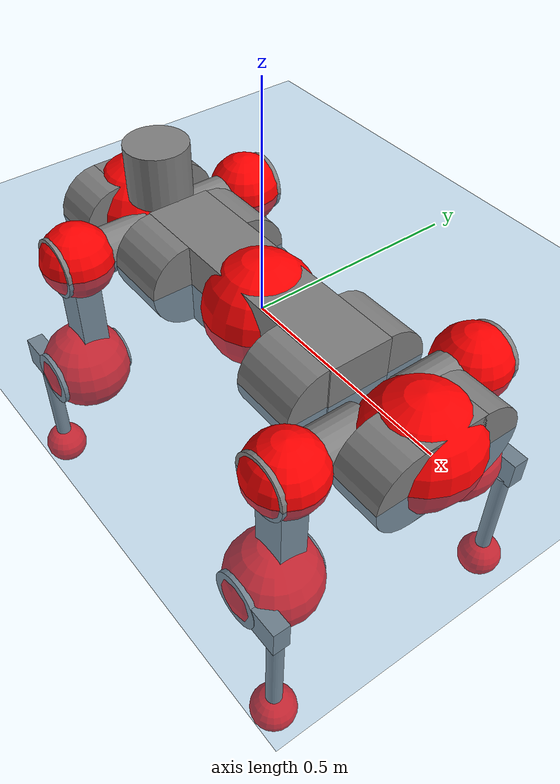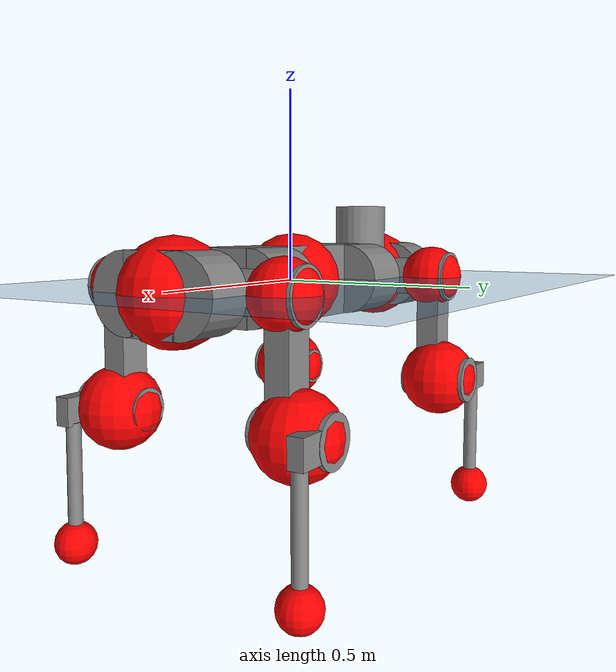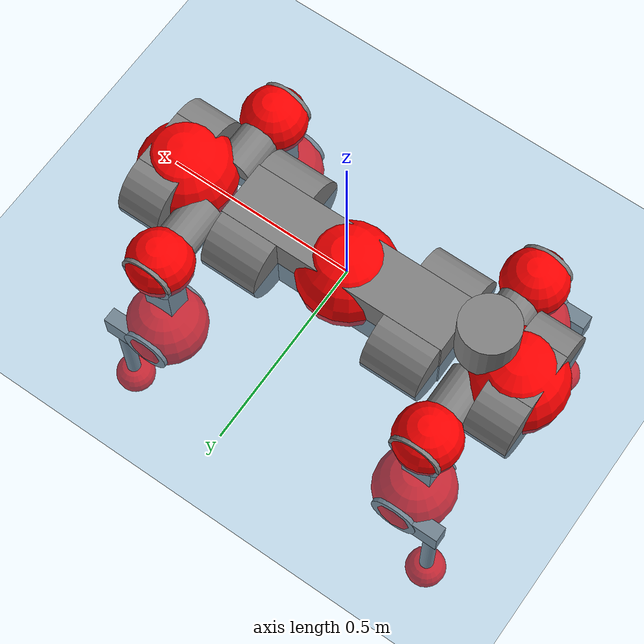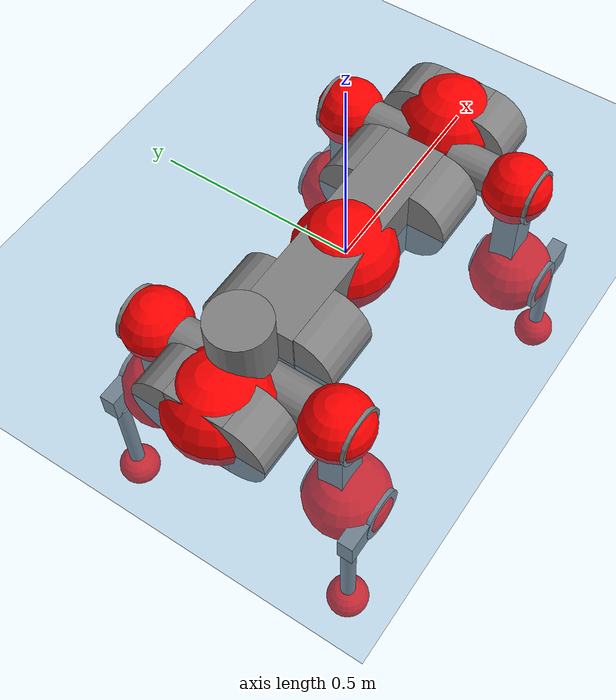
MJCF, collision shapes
<mujoco model="anymal_c">
  <compiler angle="radian" assetdir="assets" balanceinertia="true" inertiafromgeom="false"/>

  <option timestep="0.005" density="1.2" viscosity="2e-05"/>

  <size nkey="1"/>

  <visual>
    <quality shadowsize="8192"/>
    <map shadowclip="0.5"/>
  </visual>

  <default>
    <default class="/">
      <material specular="0" shininess="0.25"/>
      <geom contype="0" conaffinity="0" group="1" solref="-1000 -80"/>
      <site size="0.01 0.005 0.005" group="5"/>
      <general forcelimited="true" forcerange="-80 80" biastype="affine" gainprm="80" biasprm="0 -80 -2"/>
      <default class="anymal_c">
        <joint armature="0.01" damping="0.01" frictionloss="0.1"/>
        <default class="visual">
          <geom type="mesh" group="2"/>
          <default class="visual_zflip"/>
        </default>
        <default class="collision">
          <geom type="cylinder" group="3"/>
          <default class="foot">
            <geom size="0.03 0 0" type="sphere" condim="6" priority="1" friction="0.8 0.02 0.01" solimp="0.015 1 0.03"/>
          </default>
        </default>
      </default>
      <default class="reward_collision_sphere">
        <geom group="5" rgba="1 0 0 1"/>
      </default>
    </default>
  </default>

  <asset>
    <texture type="skybox" colorspace="auto" name="//unnamed_texture_0" builtin="gradient" rgb1="0.95 0.95 0.95" rgb2="0.95 0.95 0.95" width="100" height="600"/>
    <texture type="2d" colorspace="auto" name="texplane" builtin="checker" rgb1="0.345 0.575 0.748" rgb2="0.345 0.575 0.748" markrgb="1 1 1" width="512" height="512"/>
    <texture type="2d" colorspace="linear" name="base" file="base.png"/>
    <texture type="2d" colorspace="linear" name="top_shell" file="top_shell.png"/>
    <texture type="2d" colorspace="linear" name="bottom_shell" file="bottom_shell.png"/>
    <texture type="2d" colorspace="linear" name="remote" file="remote.png"/>
    <texture type="2d" colorspace="linear" name="hatch" file="hatch.png"/>
    <texture type="2d" colorspace="linear" name="handle" file="handle.png"/>
    <texture type="2d" colorspace="linear" name="face" file="face.png"/>
    <texture type="2d" colorspace="linear" name="battery" file="battery.png"/>
    <texture type="2d" colorspace="linear" name="lidar_cage" file="lidar_cage.png"/>
    <texture type="2d" colorspace="linear" name="depth_camera" file="depth_camera.png"/>
    <texture type="2d" colorspace="linear" name="wide_angle_camera" file="wide_angle_camera.png"/>
    <texture type="2d" colorspace="linear" name="lidar" file="lidar.png"/>
    <texture type="2d" colorspace="linear" name="drive" file="drive.png"/>
    <texture type="2d" colorspace="linear" name="hip_l" file="hip_l.png"/>
    <texture type="2d" colorspace="linear" name="shank_l" file="shank_l.png"/>
    <texture type="2d" colorspace="linear" name="foot" file="foot.png"/>
    <texture type="2d" colorspace="linear" name="thigh" file="thigh.png"/>
    <texture type="2d" colorspace="linear" name="shank_r" file="shank_r.png"/>
    <texture type="2d" colorspace="linear" name="hip_r" file="hip_r.png"/>
    <material name="MatPlane" class="/" texture="texplane" texuniform="true" texrepeat="2 2" specular="0.9" shininess="0.5"/>
    <material name="black_plastic" class="/" rgba="0.007 0.007 0.007 1"/>
    <material name="green" class="/" rgba="0.052 0.178 0.033 1"/>
    <material name="red" class="/" rgba="0.178 0.006 0.005 1"/>
    <material name="yellow" class="/" rgba="0.178 0.119 0.006 1"/>
    <material name="lwl" class="/" rgba="0.8 0.8 0.8 1"/>
    <material name="base" class="/" texture="base"/>
    <material name="top_shell" class="/" texture="top_shell"/>
    <material name="bottom_shell" class="/" texture="bottom_shell"/>
    <material name="hip_l" class="/" texture="hip_l"/>
    <material name="thigh" class="/" texture="thigh"/>
    <material name="shank_l" class="/" texture="shank_l"/>
    <material name="foot" class="/" texture="foot"/>
    <material name="hip_r" class="/" texture="hip_r"/>
    <material name="shank" class="/" texture="shank_r"/>
    <material name="hatch" class="/" texture="hatch"/>
    <material name="remote" class="/" texture="remote"/>
    <material name="handle" class="/" texture="handle"/>
    <material name="face" class="/" texture="face"/>
    <material name="depth_camera" class="/" texture="depth_camera"/>
    <material name="wide_angle_camera" class="/" texture="wide_angle_camera"/>
    <material name="battery" class="/" texture="battery"/>
    <material name="lidar_cage" class="/" texture="lidar_cage"/>
    <material name="lidar" class="/" texture="lidar"/>
    <material name="drive" class="/" texture="drive"/>
    <mesh name="base_0" class="/" file="base_0.obj"/>
    <mesh name="base_1" class="/" file="base_1.obj"/>
    <mesh name="base_2" class="/" file="base_2.obj"/>
    <mesh name="base_3" class="/" file="base_3.obj"/>
    <mesh name="base_4" class="/" file="base_4.obj"/>
    <mesh name="base_5" class="/" file="base_5.obj"/>
    <mesh name="top_shell" class="/" file="top_shell.obj"/>
    <mesh name="bottom_shell" class="/" file="bottom_shell.obj"/>
    <mesh name="remote" class="/" file="remote.obj"/>
    <mesh name="handle" class="/" file="handle.obj"/>
    <mesh name="face" class="/" file="face.obj"/>
    <mesh name="wide_angle_camera" class="/" file="wide_angle_camera.obj"/>
    <mesh name="depth_camera" class="/" file="depth_camera.obj"/>
    <mesh name="battery" class="/" file="battery.obj"/>
    <mesh name="lidar_cage" class="/" file="lidar_cage.obj"/>
    <mesh name="lidar" class="/" file="lidar.obj"/>
    <mesh name="drive" class="/" file="drive.obj"/>
    <mesh name="hip_l" class="/" file="hip_l.obj"/>
    <mesh name="thigh" class="/" file="thigh.obj"/>
    <mesh name="shank_l" class="/" file="shank_l.obj"/>
    <mesh name="foot" class="/" file="foot.obj"/>
    <mesh name="hip_r" class="/" file="hip_r.obj"/>
    <mesh name="hatch" class="/" file="hatch.obj"/>
    <mesh name="shank_r" class="/" file="shank_r.obj"/>
  </asset>

  <worldbody>
    <geom name="floor" class="/" size="100 100 0.125" type="plane" group="0" material="MatPlane"/>
    <light name="toplight_shadow" class="/" pos="0 0 5" dir="0.0990148 0.0990148 -0.990148" type="directional" ambient="0.04 0.04 0.04" diffuse="0.55 0.55 0.55" specular="0.12 0.12 0.12"/>
    <light name="toplight_fill" class="/" pos="0 0 5" dir="0.0990148 0.0990148 -0.990148" type="directional" castshadow="false" ambient="0.04 0.04 0.04" diffuse="0.3 0.3 0.3" specular="0.08 0.08 0.08"/>
    <body name="trunk" childclass="anymal_c" pos="-0.00430888 0.00127749 -0.00161518" quat="0.999999 0.000828847 0.000349736 0.000669756">
      <inertial pos="0.00273914 -0.00292472 0.0527239" quat="0.500013 0.49995 0.499976 0.500061" mass="23.2751" diaginertia="0.715922 0.851301 0.280028"/>
      <joint name="//unnamed_joint_0" type="free" armature="0" damping="0" frictionloss="0"/>
      <geom name="//unnamed_geom_1" class="visual" material="green" mesh="base_0"/>
      <geom name="//unnamed_geom_2" class="visual" material="yellow" mesh="base_1"/>
      <geom name="//unnamed_geom_3" class="visual" material="red" mesh="base_2"/>
      <geom name="//unnamed_geom_4" class="visual" material="black_plastic" mesh="base_3"/>
      <geom name="//unnamed_geom_5" class="visual" material="lwl" mesh="base_4"/>
      <geom name="//unnamed_geom_6" class="visual" material="base" mesh="base_5"/>
      <geom name="trunk_1" class="collision" size="0.306827 0.0740616 0.0952221" type="box"/>
      <geom name="trunk_2" class="collision" size="0.0952221 0.0767067" pos="0.226917 0.0753262 0" quat="0.707107 0 0.707107 0"/>
      <geom name="trunk_3" class="collision" size="0.0952221 0.0767067" pos="-0.226917 0.0753262 0" quat="0.707107 0 0.707107 0"/>
      <geom name="trunk_4" class="collision" size="0.0952221 0.0767067" pos="0.226917 -0.0753262 0" quat="0.707107 0 0.707107 0"/>
      <geom name="trunk_5" class="collision" size="0.0952221 0.0767067" pos="-0.226917 -0.0753262 0" quat="0.707107 0 0.707107 0"/>
      <geom name="//unnamed_geom_12" class="visual" material="top_shell" mesh="top_shell"/>
      <geom name="//unnamed_geom_13" class="visual" material="bottom_shell" mesh="bottom_shell"/>
      <geom name="//unnamed_geom_14" class="visual" material="remote" mesh="remote"/>
      <geom name="//unnamed_geom_15" class="visual" material="handle" mesh="handle"/>
      <geom name="//unnamed_geom_16" class="visual" pos="0.432446 0 0" quat="1 0 0 0" material="face" mesh="face"/>
      <geom name="trunk_6" class="collision" size="0.0581913 0.0740616 0.0952221" pos="0.489827 0 0" type="box"/>
      <geom name="//unnamed_geom_18" class="collision" size="0.0952221 0.0581913" pos="0.489827 0.0753262 0" quat="0.707107 0 0.707107 0"/>
      <geom name="//unnamed_geom_19" class="collision" size="0.0952221 0.0581913" pos="0.489827 -0.0753262 0" quat="0.707107 0 0.707107 0"/>
      <geom name="//unnamed_geom_20" class="visual" pos="0.481638 0 -0.0308834" quat="0.965926 0 0.258819 0" material="depth_camera" mesh="depth_camera"/>
      <geom name="//unnamed_geom_21" class="visual" pos="0.535211 0 0.0157886" material="wide_angle_camera" mesh="wide_angle_camera"/>
      <geom name="//unnamed_geom_22" class="visual_zflip" pos="-0.432446 0 0" quat="0 0 0 1" material="face" mesh="face"/>
      <geom name="trunk_7" class="collision" size="0.0581913 0.0740616 0.0952221" pos="-0.489827 0 0" quat="0 0 0 1" type="box"/>
      <geom name="//unnamed_geom_24" class="collision" size="0.0952221 0.0581913" pos="-0.489827 -0.0753262 0" quat="0 -0.707107 0 0.707107"/>
      <geom name="//unnamed_geom_25" class="collision" size="0.0952221 0.0581913" pos="-0.489827 0.0753262 0" quat="0 -0.707107 0 0.707107"/>
      <geom name="//unnamed_geom_26" class="visual" pos="-0.481638 0 -0.0308834" quat="0 -0.258819 0 0.965926" material="depth_camera" mesh="depth_camera"/>
      <geom name="//unnamed_geom_27" class="visual_zflip" pos="-0.535211 0 0.0157886" quat="0 0 0 1" material="wide_angle_camera" mesh="wide_angle_camera"/>
      <geom name="//unnamed_geom_28" class="visual" material="battery" mesh="battery"/>
      <geom name="//unnamed_geom_29" class="visual" pos="0 0.0827085 0.0305521" quat="0.683013 -0.183013 0.183013 0.683013" material="depth_camera" mesh="depth_camera"/>
      <geom name="//unnamed_geom_30" class="visual" pos="0 -0.0827085 0.0305521" quat="0.683013 0.183013 0.183013 -0.683013" material="depth_camera" mesh="depth_camera"/>
      <geom name="//unnamed_geom_31" class="visual" pos="-0.37976 0 0.0775194" quat="1 0 0 0" material="lidar_cage" mesh="lidar_cage"/>
      <geom name="trunk_8" class="collision" size="0.0740616 0.0634814" pos="-0.37976 0 0.140801"/>
      <geom name="//unnamed_geom_33" class="visual" pos="-0.37976 1.28835e-05 0.149976" quat="0.707107 0 0 -0.707107" material="lidar" mesh="lidar"/>
      <geom name="//unnamed_geom_34" class="visual" pos="0.312884 0.111906 3.69207e-10" quat="0.258819 0.965926 0 0" material="drive" mesh="drive"/>
      <geom name="//unnamed_geom_35" class="visual" pos="0.312884 -0.111906 -3.69207e-10" quat="0.258819 -0.965926 0 0" material="drive" mesh="drive"/>
      <geom name="//unnamed_geom_36" class="visual" pos="-0.312884 0.111906 -3.69207e-10" quat="0 0 0.965926 -0.258819" material="drive" mesh="drive"/>
      <geom name="//unnamed_geom_37" class="visual" pos="-0.312884 -0.111906 3.69207e-10" quat="0 0 -0.965926 -0.258819" material="drive" mesh="drive"/>
      <geom name="//unnamed_geom_38" class="visual" pos="0.121022 0 0.0769921" quat="1 0 0 0" material="hatch" mesh="hatch"/>
      <geom name="//unnamed_geom_39" class="reward_collision_sphere" size="0.126963"/>
      <geom name="//unnamed_geom_40" class="reward_collision_sphere" size="0.126963" pos="0.469483 0 0"/>
      <geom name="//unnamed_geom_41" class="reward_collision_sphere" size="0.126963" pos="-0.469483 0 0"/>
      <site name="imu" pos="0.270059 -0.00226882 0.0774304" size="0.0105802"/>
      <camera name="track" pos="0 -2.15218 0" quat="0.707107 0.707107 0 0" mode="trackcom"/>
      <camera name="ego_camera" pos="0.469483 0 -0.0421874" quat="-0.5 -0.5 0.5 0.5"/>
      <body name="LF_HIP" pos="0.316079 0.112971 -0.000100018" quat="0.258304 0.966062 0.00140832 0.000988393">
        <inertial pos="0.0643003 -0.0174835 -0.00818532" quat="-0.124755 0.709944 -0.134665 0.679913" mass="3.16184" diaginertia="0.00694988 0.00719097 0.00413196"/>
        <joint name="LF_HAA" pos="0 0 0" axis="0.999388 0.0280378 -0.0209105" stiffness="0.021485" range="-0.754932 0.4837" armature="0.0135207" damping="0.0237605" frictionloss="0.107954"/>
        <geom name="//unnamed_geom_42" class="visual" pos="0 2.17188e-05 -3.56729e-06" quat="0.258819 -0.965926 0 0" material="hip_l" mesh="hip_l"/>
        <geom name="//unnamed_geom_43" class="visual" pos="0.0624934 -0.0761482 -0.0438059" quat="0.183013 -0.683013 0.683013 0.183013" material="drive" mesh="drive"/>
        <geom name="//unnamed_geom_44" class="collision" size="0.0529012 0.0740616" pos="0.0624934 -0.0128698 -0.0072826" quat="-0.353553 -0.612372 0.612372 -0.353553"/>
        <body name="LF_THIGH" pos="0.0635738 -0.0788697 -0.043343" quat="0.183341 -0.683029 0.682925 0.182951">
          <inertial pos="0.0313396 0.000319725 -0.252904" quat="0.993408 -0.00305624 -0.0794289 0.0825971" mass="3.61163" diaginertia="0.0368658 0.0422153 0.0053095"/>
          <joint name="LF_HFE" pos="0 0 0" axis="0.999998 -0.00164578 0.00112528" stiffness="0.00471826" range="-3.12249 3.13452" armature="0.00867524" damping="0.00972587" frictionloss="0.108009"/>
          <geom name="//unnamed_geom_45" class="visual" pos="-0.000652451 -1.02811e-06 0" quat="0.707107 0 0 -0.707107" material="thigh" mesh="thigh"/>
          <geom name="//unnamed_geom_46" class="collision" size="0.0687715 0.0423209" pos="0.0417318 0 0" quat="0.5 0.5 -0.5 -0.5"/>
          <geom name="//unnamed_geom_47" class="collision" size="0.0396759 0.0317407 0.149514" pos="0.0312989 0 -0.149042" quat="0.707107 0 0 -0.707107" type="box"/>
          <geom name="//unnamed_geom_48" class="visual" pos="0.104643 0 -0.300585" quat="1 0 0 0" material="drive" mesh="drive"/>
          <geom name="//unnamed_geom_49" class="collision" size="0.0529012 0.0740616" pos="0.0316119 0 -0.300585" quat="0.707107 0 0.707107 0"/>
          <geom name="//unnamed_geom_50" class="reward_collision_sphere" size="0.0846419" pos="0.0260824 0 0"/>
          <body name="LF_SHANK" pos="0.105947 0.00645413 -0.303179" quat="1 0.000954448 -0.000106105 -0.000183598">
            <inertial pos="0.00622457 -0.0681295 -0.0844321" quat="0.992521 -0.120662 -0.0174183 -0.00626235" mass="0.684468" diaginertia="0.0128295 0.0130979 0.00151133"/>
            <joint name="LF_KFE" pos="0 0 0" axis="0.999947 0.00851554 0.00585492" range="-3.14799 3.09178" armature="0.0102196" damping="0.0178163" frictionloss="0.115952"/>
            <geom name="//unnamed_geom_51" class="visual" pos="-0.00021275 -0.00113439 0" quat="0.707107 0 0 -0.707107" material="shank_l" mesh="shank_l"/>
            <geom name="LF_kfe_act" class="collision" size="0.0634814 0.0211605" pos="0.0208659 0 0" quat="0.5 0.5 -0.5 -0.5"/>
            <geom name="//unnamed_geom_53" class="collision" size="0.0608353 0.0357083 0.0201024" pos="0.0208659 -0.061874 0" quat="0.5 0.5 -0.5 -0.5" type="box"/>
            <geom name="//unnamed_geom_54" class="visual" pos="0.0136151 -0.0950076 -0.356452" quat="0.382683 0 0 -0.92388" material="foot" mesh="foot"/>
            <geom name="LF_calf" class="collision" size="0.0185154 0.149448" pos="0.013615 -0.094642 -0.178226" quat="0.707107 0 0 -0.707107"/>
            <geom name="LF_foot" class="foot" size="0.0301483" pos="0.013615 -0.094642 -0.332722" quat="0.707107 0 0 -0.707107"/>
            <geom name="//unnamed_geom_57" class="reward_collision_sphere" size="0.105802" pos="-0.0521648 0 0"/>
            <geom name="//unnamed_geom_58" class="reward_collision_sphere" size="0.0529012" pos="0.013615 -0.094642 -0.332722"/>
            <site name="LF_foot" class="foot" pos="0.013615 -0.094642 -0.332722" quat="0.707107 0 0 -0.707107" size="0.0105802"/>
          </body>
        </body>
      </body>
      <body name="RF_HIP" pos="0.319215 -0.118164 0.00308823" quat="0.258099 -0.966118 0.00103275 -0.000541011">
        <inertial pos="0.0532503 0.0189184 -0.00393365" quat="0.132697 0.677068 0.127846 0.712479" mass="3.15554" diaginertia="0.00663082 0.00672085 0.00399074"/>
        <joint name="RF_HAA" pos="0 0 0" axis="0.999797 0.0110392 0.016867" range="-0.390281 0.766392" armature="0.0102288" damping="0.0212359" frictionloss="0.123962"/>
        <geom name="//unnamed_geom_59" class="visual" pos="0 -2.17186e-05 -3.56728e-06" quat="0.258819 0.965926 0 0" material="hip_r" mesh="hip_r"/>
        <geom name="//unnamed_geom_60" class="visual" pos="0.0624934 0.0761482 -0.0438059" quat="0.183013 0.683013 0.683013 -0.183013" material="drive" mesh="drive"/>
        <geom name="//unnamed_geom_61" class="collision" size="0.0529012 0.0740616" pos="0.0624934 0.0128698 -0.0072826" quat="-0.353553 0.612372 0.612372 0.353553"/>
        <body name="RF_THIGH" pos="0.0631367 0.0769662 -0.0449141" quat="0.182828 0.682626 0.683566 -0.182572">
          <inertial pos="0.0319939 -0.00704527 -0.256966" quat="0.992919 -0.00528255 -0.0780999 0.0893556" mass="3.72625" diaginertia="0.0371291 0.0453521 0.00555304"/>
          <joint name="RF_HFE" pos="0 0 0" axis="0.999985 -0.00518567 -0.00181258" stiffness="0.00507412" range="-3.18768 3.14579" armature="0.00939622" damping="0.0206185" frictionloss="0.118213"/>
          <geom name="//unnamed_geom_62" class="visual" pos="-0.000652451 -1.02811e-06 0" quat="0.707107 0 0 -0.707107" material="thigh" mesh="thigh"/>
          <geom name="//unnamed_geom_63" class="collision" size="0.0687715 0.0423209" pos="0.0417318 0 0" quat="0.5 0.5 0.5 0.5"/>
          <geom name="//unnamed_geom_64" class="collision" size="0.0396759 0.0317407 0.149514" pos="0.0312989 0 -0.149042" quat="0.707107 0 0 0.707107" type="box"/>
          <geom name="//unnamed_geom_65" class="visual" pos="0.104643 0 -0.300585" quat="1 0 0 0" material="drive" mesh="drive"/>
          <geom name="//unnamed_geom_66" class="collision" size="0.0529012 0.0740616" pos="0.0316119 0 -0.300585" quat="0.707107 0 0.707107 0"/>
          <geom name="//unnamed_geom_67" class="reward_collision_sphere" size="0.0846419" pos="0.0260824 0 0"/>
          <body name="RF_SHANK" pos="0.102297 0.00233838 -0.304243" quat="0.999995 0.000784111 -0.00282478 0.000846108">
            <inertial pos="-0.00148838 0.0671342 -0.0884577" quat="0.992432 0.1215 -0.00641808 0.0165748" mass="0.706175" diaginertia="0.0122298 0.0123351 0.0013105"/>
            <joint name="RF_KFE" pos="0 0 0" axis="0.999967 -0.00385686 0.00718835" range="-3.0347 3.10535" armature="0.0118971" damping="0" frictionloss="0.0841439"/>
            <geom name="//unnamed_geom_68" class="visual" pos="-0.000212749 0.00113439 0" quat="0.707107 0 0 0.707107" material="shank" mesh="shank_r"/>
            <geom name="RF_kfe_act" class="collision" size="0.0634814 0.0211605" pos="0.0208659 0 0" quat="0.5 0.5 0.5 0.5"/>
            <geom name="//unnamed_geom_70" class="collision" size="0.0608353 0.0357083 0.0201024" pos="0.0208659 0.061874 0" quat="0.5 0.5 0.5 0.5" type="box"/>
            <geom name="//unnamed_geom_71" class="visual" pos="0.013615 0.0950076 -0.356452" quat="0.382683 0 0 0.92388" material="foot" mesh="foot"/>
            <geom name="RF_calf" class="collision" size="0.0185154 0.149448" pos="0.013615 0.094642 -0.178226" quat="0.707107 0 0 0.707107"/>
            <geom name="RF_foot" class="foot" size="0.0293664" pos="0.013615 0.094642 -0.332722" quat="0.707107 0 0 0.707107"/>
            <geom name="//unnamed_geom_74" class="reward_collision_sphere" size="0.105802" pos="-0.0521648 0 0"/>
            <geom name="//unnamed_geom_75" class="reward_collision_sphere" size="0.0529012" pos="0.013615 0.094642 -0.332722"/>
            <site name="RF_foot" class="foot" pos="0.013615 0.094642 -0.332722" quat="0.707107 0 0 0.707107" size="0.0105802"/>
          </body>
        </body>
      </body>
      <body name="LH_HIP" pos="-0.320205 0.116037 0.000435071" quat="0.000549519 0.000340205 0.965861 -0.259061">
        <inertial pos="0.0538391 0.0233137 -0.00962689" quat="0.149372 0.687221 0.128472 0.699221" mass="3.30251" diaginertia="0.0071075 0.00710989 0.00453087"/>
        <joint name="LH_HAA" pos="0 0 0" axis="0.99999 -0.000433535 -0.00438278" stiffness="0.000504026" range="-0.524427 0.747875" armature="0.0104847" damping="0.0072377" frictionloss="0.0972017"/>
        <geom name="//unnamed_geom_76" class="visual" pos="0 -2.17186e-05 -3.56728e-06" quat="-0.258819 -0.965926 0 0" material="hip_r" mesh="hip_r"/>
        <geom name="//unnamed_geom_77" class="visual" pos="0.0624934 0.0761482 -0.0438059" quat="0.183013 0.683013 0.683013 -0.183013" material="drive" mesh="drive"/>
        <geom name="//unnamed_geom_78" class="collision" size="0.0529012 0.0740616" pos="0.0624934 0.0128698 -0.0072826" quat="-0.353553 0.612372 0.612372 0.353553"/>
        <body name="LH_THIGH" pos="0.0619357 0.0791454 -0.0471573" quat="0.183685 0.682818 0.682898 -0.183492">
          <inertial pos="0.0345079 -0.00567861 -0.257443" quat="0.993356 -0.0158884 -0.0797015 0.0814832" mass="3.64856" diaginertia="0.0371331 0.0428037 0.00576063"/>
          <joint name="LH_HFE" pos="0 0 0" axis="0.999721 -0.0226952 0.00648569" stiffness="0.0101706" range="-3.17368 3.11936" armature="0.00790795" damping="0.0166177" frictionloss="0.0872038"/>
          <geom name="//unnamed_geom_79" class="visual" pos="-0.000652451 -1.02811e-06 0" quat="0.707107 0 0 -0.707107" material="thigh" mesh="thigh"/>
          <geom name="//unnamed_geom_80" class="collision" size="0.0687715 0.0423209" pos="0.0417318 0 0" quat="0.5 0.5 -0.5 -0.5"/>
          <geom name="//unnamed_geom_81" class="collision" size="0.0396759 0.0317407 0.149514" pos="0.0312989 0 -0.149042" quat="0.707107 0 0 -0.707107" type="box"/>
          <geom name="//unnamed_geom_82" class="visual" pos="0.104643 0 -0.300585" quat="1 0 0 0" material="drive" mesh="drive"/>
          <geom name="//unnamed_geom_83" class="collision" size="0.0529012 0.0740616" pos="0.0316119 0 -0.300585" quat="0.707107 0 0.707107 0"/>
          <geom name="//unnamed_geom_84" class="reward_collision_sphere" size="0.0846419" pos="0.0260824 0 0"/>
          <body name="LH_SHANK" pos="0.105672 -0.00353438 -0.294057" quat="0.999995 -0.00307382 0.000474479 0.000933937">
            <inertial pos="0.00771889 0.0659133 -0.0923587" quat="0.992977 0.115508 -0.00145692 0.0255261" mass="0.73266" diaginertia="0.0123973 0.0131182 0.00146023"/>
            <joint name="LH_KFE" pos="0 0 0" axis="0.999984 -0.00152936 -0.00548454" range="-3.1011 3.16102" armature="0.0117419" damping="0.00792339" frictionloss="0.120166"/>
            <geom name="//unnamed_geom_85" class="visual" pos="-0.000212749 0.00113439 0" quat="-0.707107 0 0 -0.707107" material="shank" mesh="shank_r"/>
            <geom name="LH_kfe_act" class="collision" size="0.0634814 0.0211605" pos="0.0208659 0 0" quat="0.5 0.5 -0.5 -0.5"/>
            <geom name="//unnamed_geom_87" class="collision" size="0.0608353 0.0357083 0.0201024" pos="0.0208659 0.061874 0" quat="0.5 0.5 -0.5 -0.5" type="box"/>
            <geom name="//unnamed_geom_88" class="visual" pos="0.013615 0.0950076 -0.356452" quat="-0.382683 0 0 -0.92388" material="foot" mesh="foot"/>
            <geom name="LH_calf" class="collision" size="0.0185154 0.149448" pos="0.013615 0.094642 -0.178226" quat="0.707107 0 0 -0.707107"/>
            <geom name="LH_foot" class="foot" size="0.0354646" pos="0.013615 0.094642 -0.332722" quat="0.707107 0 0 -0.707107"/>
            <geom name="//unnamed_geom_91" class="reward_collision_sphere" size="0.105802" pos="-0.0521648 0 0"/>
            <geom name="//unnamed_geom_92" class="reward_collision_sphere" size="0.0529012" pos="0.013615 0.094642 -0.332722"/>
            <site name="LH_foot" class="foot" pos="0.013615 0.094642 -0.332722" quat="0.707107 0 0 -0.707107" size="0.0105802"/>
          </body>
        </body>
      </body>
      <body name="RH_HIP" pos="-0.307403 -0.110367 -0.00099988" quat="0.000438014 -0.000404254 -0.965959 -0.258696">
        <inertial pos="0.0570312 -0.016481 -0.00974754" quat="-0.117384 0.711976 -0.110032 0.683524" mass="3.20631" diaginertia="0.00698736 0.00677995 0.00411912"/>
        <joint name="RH_HAA" pos="0 0 0" axis="0.999558 -0.00840218 0.0285102" range="-0.732965 0.527681" armature="0.00986982" damping="0.0113349" frictionloss="0.107479"/>
        <geom name="//unnamed_geom_93" class="visual" pos="0 2.17188e-05 -3.56729e-06" quat="-0.258819 0.965926 0 0" material="hip_l" mesh="hip_l"/>
        <geom name="//unnamed_geom_94" class="visual" pos="0.0624934 -0.0761482 -0.0438059" quat="-0.183013 0.683013 -0.683013 -0.183013" material="drive" mesh="drive"/>
        <geom name="//unnamed_geom_95" class="collision" size="0.0529012 0.0740616" pos="0.0624934 -0.0128698 -0.0072826" quat="0.353553 0.612372 -0.612372 0.353553"/>
        <body name="RH_THIGH" pos="0.0650785 -0.0793486 -0.0486797" quat="-0.182456 0.683436 -0.68263 -0.183417">
          <inertial pos="0.0345711 -0.0019037 -0.25711" quat="0.989776 0.0158626 -0.102033 0.0983955" mass="3.52551" diaginertia="0.0368238 0.041227 0.00498356"/>
          <joint name="RH_HFE" pos="0 0 0" axis="0.999921 0.00407547 -0.0118746" stiffness="0.0105166" range="-3.1409 3.17386" armature="0.00891059" damping="0.0288944" frictionloss="0.1042"/>
          <geom name="//unnamed_geom_96" class="visual" pos="-0.000652451 -1.02811e-06 0" quat="0.707107 0 0 -0.707107" material="thigh" mesh="thigh"/>
          <geom name="//unnamed_geom_97" class="collision" size="0.0687715 0.0423209" pos="0.0417318 0 0" quat="0.5 0.5 0.5 0.5"/>
          <geom name="//unnamed_geom_98" class="collision" size="0.0396759 0.0317407 0.149514" pos="0.0312989 0 -0.149042" quat="0.707107 0 0 0.707107" type="box"/>
          <geom name="//unnamed_geom_99" class="visual" pos="0.104643 0 -0.300585" quat="1 0 0 0" material="drive" mesh="drive"/>
          <geom name="//unnamed_geom_100" class="collision" size="0.0529012 0.0740616" pos="0.0316119 0 -0.300585" quat="0.707107 0 0.707107 0"/>
          <geom name="//unnamed_geom_101" class="reward_collision_sphere" size="0.0846419" pos="0.0260824 0 0"/>
          <body name="RH_SHANK" pos="0.103713 -0.000591602 -0.301531" quat="1 7.37528e-05 0.000270299 -0.0001984">
            <inertial pos="0.00987056 -0.0597963 -0.0903774" quat="0.993297 -0.113459 -0.00615294 -0.0212067" mass="0.649873" diaginertia="0.0124721 0.0123842 0.00141218"/>
            <joint name="RH_KFE" pos="0 0 0" axis="1 -8.7828e-05 5.47585e-07" range="-3.1615 3.03276" armature="0.0104522" damping="0.0164747" frictionloss="0.0763792"/>
            <geom name="//unnamed_geom_102" class="visual" pos="-0.00021275 -0.00113439 0" quat="0.707107 0 0 -0.707107" material="shank_l" mesh="shank_l"/>
            <geom name="RH_kfe_act" class="collision" size="0.0634814 0.0211605" pos="0.0208659 0 0" quat="0.5 0.5 0.5 0.5"/>
            <geom name="//unnamed_geom_104" class="collision" size="0.0608353 0.0357083 0.0201024" pos="0.0208659 -0.061874 0" quat="0.5 0.5 0.5 0.5" type="box"/>
            <geom name="//unnamed_geom_105" class="visual" pos="0.0136151 -0.0950076 -0.356452" quat="0.382683 0 0 -0.92388" material="foot" mesh="foot"/>
            <geom name="RH_calf" class="collision" size="0.0185154 0.149448" pos="0.013615 -0.094642 -0.178226" quat="0.707107 0 0 0.707107"/>
            <geom name="RH_foot" class="foot" size="0.0255169" pos="0.013615 -0.094642 -0.332722" quat="0.707107 0 0 0.707107"/>
            <geom name="//unnamed_geom_108" class="reward_collision_sphere" size="0.105802" pos="-0.0521648 0 0"/>
            <geom name="//unnamed_geom_109" class="reward_collision_sphere" size="0.0529012" pos="0.013615 -0.094642 -0.332722"/>
            <site name="RH_foot" class="foot" pos="0.013615 -0.094642 -0.332722" quat="0.707107 0 0 0.707107" size="0.0105802"/>
          </body>
        </body>
      </body>
    </body>
  </worldbody>

  <contact>
    <pair class="/" geom1="floor" geom2="LF_foot" name="//unnamed_contact_0"/>
    <pair class="/" geom1="floor" geom2="RF_foot" name="//unnamed_contact_1"/>
    <pair class="/" geom1="floor" geom2="LH_foot" name="//unnamed_contact_2"/>
    <pair class="/" geom1="floor" geom2="RH_foot" name="//unnamed_contact_3"/>
  </contact>

  <actuator>
    <general name="LF_HAA" class="/" joint="LF_HAA" forcerange="-83.9768 83.9768" gainprm="85.5448" biasprm="0 -85.5448 -2.24454"/>
    <general name="LF_HFE" class="/" joint="LF_HFE" forcerange="-95.6557 95.6557" gainprm="85.5448" biasprm="0 -85.5448 -2.24454"/>
    <general name="LF_KFE" class="/" joint="LF_KFE" forcerange="-87.7389 87.7389" gainprm="85.5448" biasprm="0 -85.5448 -2.24454"/>
    <general name="RF_HAA" class="/" joint="RF_HAA" forcerange="-82.8387 82.8387" gainprm="85.5448" biasprm="0 -85.5448 -2.24454"/>
    <general name="RF_HFE" class="/" joint="RF_HFE" forcerange="-95.1294 95.1294" gainprm="85.5448" biasprm="0 -85.5448 -2.24454"/>
    <general name="RF_KFE" class="/" joint="RF_KFE" forcerange="-82.7921 82.7921" gainprm="85.5448" biasprm="0 -85.5448 -2.24454"/>
    <general name="LH_HAA" class="/" joint="LH_HAA" forcerange="-83.427 83.427" gainprm="85.5448" biasprm="0 -85.5448 -2.24454"/>
    <general name="LH_HFE" class="/" joint="LH_HFE" forcerange="-81.8764 81.8764" gainprm="85.5448" biasprm="0 -85.5448 -2.24454"/>
    <general name="LH_KFE" class="/" joint="LH_KFE" forcerange="-85.7776 85.7776" gainprm="85.5448" biasprm="0 -85.5448 -2.24454"/>
    <general name="RH_HAA" class="/" joint="RH_HAA" forcerange="-82.4816 82.4816" gainprm="85.5448" biasprm="0 -85.5448 -2.24454"/>
    <general name="RH_HFE" class="/" joint="RH_HFE" forcerange="-91.5333 91.5333" gainprm="85.5448" biasprm="0 -85.5448 -2.24454"/>
    <general name="RH_KFE" class="/" joint="RH_KFE" forcerange="-105.426 105.426" gainprm="85.5448" biasprm="0 -85.5448 -2.24454"/>
  </actuator>

  <sensor>
    <gyro site="imu" name="imu_angular_velocity"/>
    <velocimeter site="imu" name="imu_linear_velocity"/>
    <framelinvel objtype="site" objname="LF_foot" name="LF_foot_global_linear_velocity"/>
    <framelinvel objtype="site" objname="RF_foot" name="RF_foot_global_linear_velocity"/>
    <framelinvel objtype="site" objname="LH_foot" name="LH_foot_global_linear_velocity"/>
    <framelinvel objtype="site" objname="RH_foot" name="RH_foot_global_linear_velocity"/>
  </sensor>

  <keyframe>
    <key name="home" qpos="0 0 0.55 1 0 0 0 0 0.4 -0.8 0 -0.4 0.8 0 -0.4 0.8 0 0.4 -0.8"/>
  </keyframe>
</mujoco>
